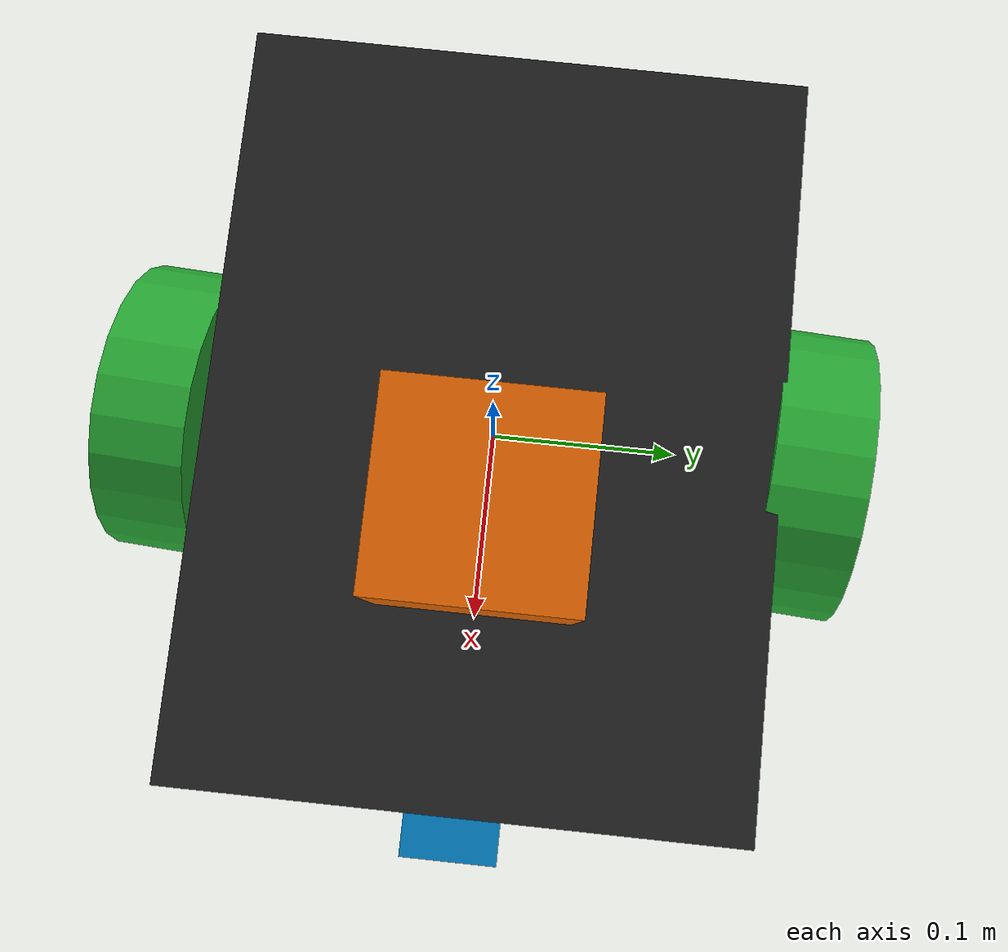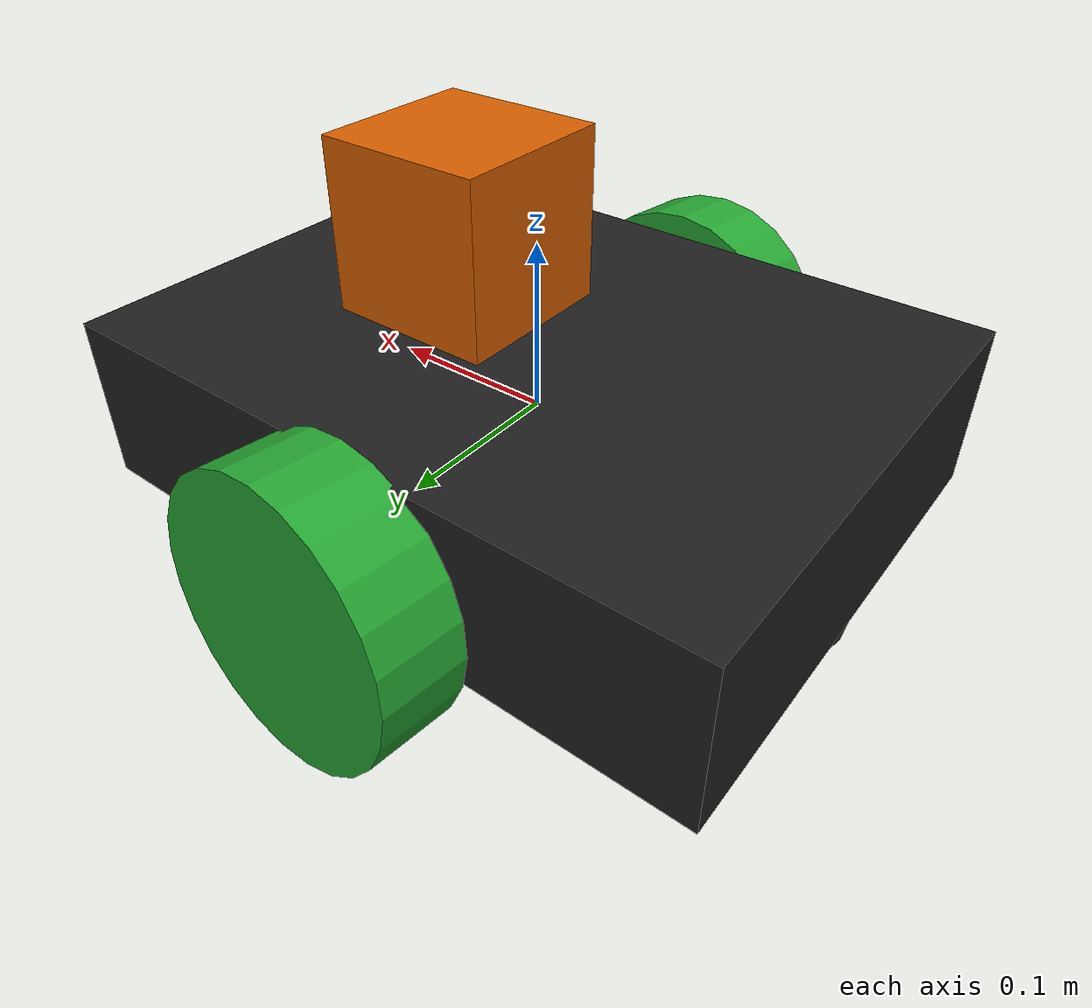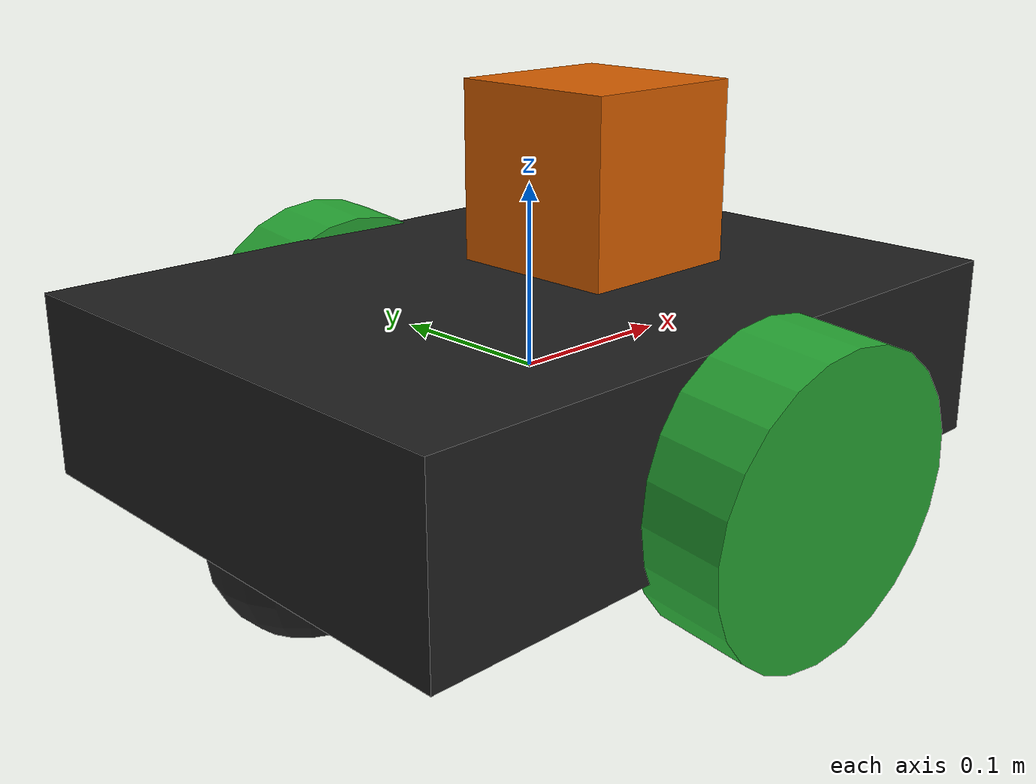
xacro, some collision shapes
<robot name="my_robot" xmlns:xacro="http://www.ros.org/wiki/xacro">
<xacro:include filename="$(find my_robot)/urdf/my_robot.gazebo" />
  <link name="robot_footprint"></link>

  <joint name="robot_footprint_joint" type="fixed">
    <origin xyz="0 0 0" rpy="0 0 0" />
    <parent link="robot_footprint"/>
    <child link="chassis" />
  </joint>

  <link name='chassis'>
    <pose>0 0 0.1 0 0 0</pose>

    <inertial>
      <mass value="15.0"/>
      <origin xyz="0.0 0 0" rpy=" 0 0 0"/>
      <inertia
          ixx="0.1" ixy="0" ixz="0"
          iyy="0.1" iyz="0"
          izz="0.1"
      />
    </inertial>

    <collision name='collision'>
      <origin xyz="0 0 0" rpy=" 0 0 0"/>
      <geometry>
        <box size=".4 .2 .1"/>
      </geometry>
    </collision>

    <visual name='chassis_visual'>
      <origin xyz="0 0 0" rpy=" 0 0 0"/>
      <geometry>
        <box size=".4 .3 .1"/>
      </geometry>
    </visual>

    <collision name='back_caster_collision'>
      <origin xyz="-0.15 0 -0.05" rpy=" 0 0 0"/>
      <geometry>
        <sphere radius="0.05"/>
      </geometry>
    </collision>

    <visual name='back_caster_visual'>
      <origin xyz="-0.15 0 -0.05" rpy=" 0 0 0"/>
      <geometry>
        <sphere radius="0.05"/>
      </geometry>
    </visual>

    <collision name='front_caster_collision'>
      <origin xyz="0.15 0 -0.05" rpy=" 0 0 0"/>
      <geometry>
        <sphere radius="0.05"/>
      </geometry>
    </collision>

    <visual name='front_caster_visual'>
      <origin xyz="0.15 0 -0.05" rpy=" 0 0 0"/>
      <geometry>
        <sphere radius="0.05"/>
      </geometry>
    </visual>

  </link>

  <xacro:include filename="wheel.xacro"/>

  <!-- Left Wheel -->
  <xacro:wheel side="left"/>

  <!-- Right Wheel -->
  <xacro:wheel side="right"/>

  <joint type="continuous" name="left_wheel_hinge">
            <origin xyz="0 0.175 -0.02" rpy="0 0 0"/>
            <child link="left_wheel"/>
            <parent link="chassis"/>
            <axis xyz="0 1 0" rpy="0 0 0"/>
            <limit effort="10000" velocity="1000"/>
            <dynamics damping="1.0" friction="1.0"/>
          </joint>

  <joint type="continuous" name="right_wheel_hinge">
            <origin xyz="0 -0.175 -0.02" rpy="0 0 0"/>
            <child link="right_wheel"/>
            <parent link="chassis"/>
            <axis xyz="0 1 0" rpy="0 0 0"/>
            <limit effort="10000" velocity="1000"/>
            <dynamics damping="1.0" friction="1.0"/>
          </joint>

  <!-- Camera -->
<xacro:include filename="camera.xacro"/>

  <!-- LIDAR -->
<xacro:include filename="lidar.xacro"/>

  <gazebo reference="left_wheel">
    <material>Gazebo/Green</material>
</gazebo>
<gazebo reference="right_wheel">
    <material>Gazebo/Green</material>
</gazebo>
<gazebo reference="chassis">
    <material>Gazebo/Black</material>
</gazebo>

</robot>

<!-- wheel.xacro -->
<robot xmlns:xacro="http://www.ros.org/wiki/xacro" name="robot_name">
    <xacro:macro name="wheel" params="side">
        <link name="${side}_wheel">
            <visual>
                <origin xyz="0.0 0.0 0.0" rpy="0.0 1.507 1.507"/>
                <geometry>
                    <cylinder radius="0.08" length="0.05"/>
                </geometry>
            </visual>
            <collision>
                <origin xyz="0.0 0.0 0.0" rpy="0.0 1.507 1.507"/>
                <geometry>
                    <cylinder radius="0.08" length="0.05"/>
                </geometry>
            </collision>
            <inertial>
                <origin xyz="0.0 0.0 0.0" rpy="0.0 1.507 1.507"/>
                <mass value="5.0"/>
                <inertia ixx="0.1" ixy="0.0" ixz="0.0" iyy="0.1" iyz="0.0" izz="0.1"/>
            </inertial>

        </link>
    </xacro:macro>
</robot>

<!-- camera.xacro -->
<robot xmlns:xacro="http://www.ros.org/wiki/xacro" name="robot_name">

    <link name="camera">
        <visual>
            <origin xyz="0.0 0.0 0.0" rpy="0.0 0.0 0.0"/>
            <geometry>
                <box size="0.05 0.05 0.05"/>
            </geometry>
        </visual>
        <collision>
            <origin xyz="0.0 0.0 0.0" rpy="0.0 0.0 0.0"/>
            <geometry>
                <box size="0.05 0.05 0.05"/>
            </geometry>
        </collision>
        <inertial>
            <origin xyz="0.05 0.05 0.05" rpy="0.0 0.0 0.0"/>
            <mass value="0.1"/>
            <inertia ixx="1e-6" ixy="0" ixz="0" iyy="1e-6" iyz="0" izz="1e-6"/>
        </inertial>

    </link>

    <joint name="camera_joint" type="fixed">
        <parent link="chassis"/>
        <child link="camera"/>
        <origin xyz="0.2 0.0 0.0" rpy="0.0 0.0 0.0"/>
        <axis xyz="0.0 1 0.0"/>
    </joint>

</robot>

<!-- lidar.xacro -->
<robot xmlns:xacro="http://www.ros.org/wiki/xacro" name="robot_name">
    <link name="hokuyo">
        <collision>
            <origin xyz="0.0 0.0 0.0" rpy="0.0 0.0 0.0"/>
            <geometry>
                <box size="0.1 0.1 0.1"/>
            </geometry>
        </collision>
        <visual>
            <origin xyz="0.0 0.0 0.0" rpy="0.0 0.0 0.0"/>
            <geometry>
                <mesh filename="package://my_robot/meshes/hokuyo.dae"/>
            </geometry>
        </visual>
        <inertial>
            <origin xyz="0.0 0.0 0.0" rpy="0.0 0.0 0.0"/>
            <mass value="1e-5"/>
            <inertia ixx="1e-6" ixy="0.0" ixz="0.0" iyy="1e-6" iyz="0.0" izz="1e-6"/>
        </inertial>
    </link>

    <joint name="hokuyo_joint" type="fixed">
        <parent link="chassis"/>
        <child link="hokuyo"/>
        <origin xyz="0.05 0.0 0.1" rpy="0.0 0.0 0.0"/>
    </joint>

</robot>
